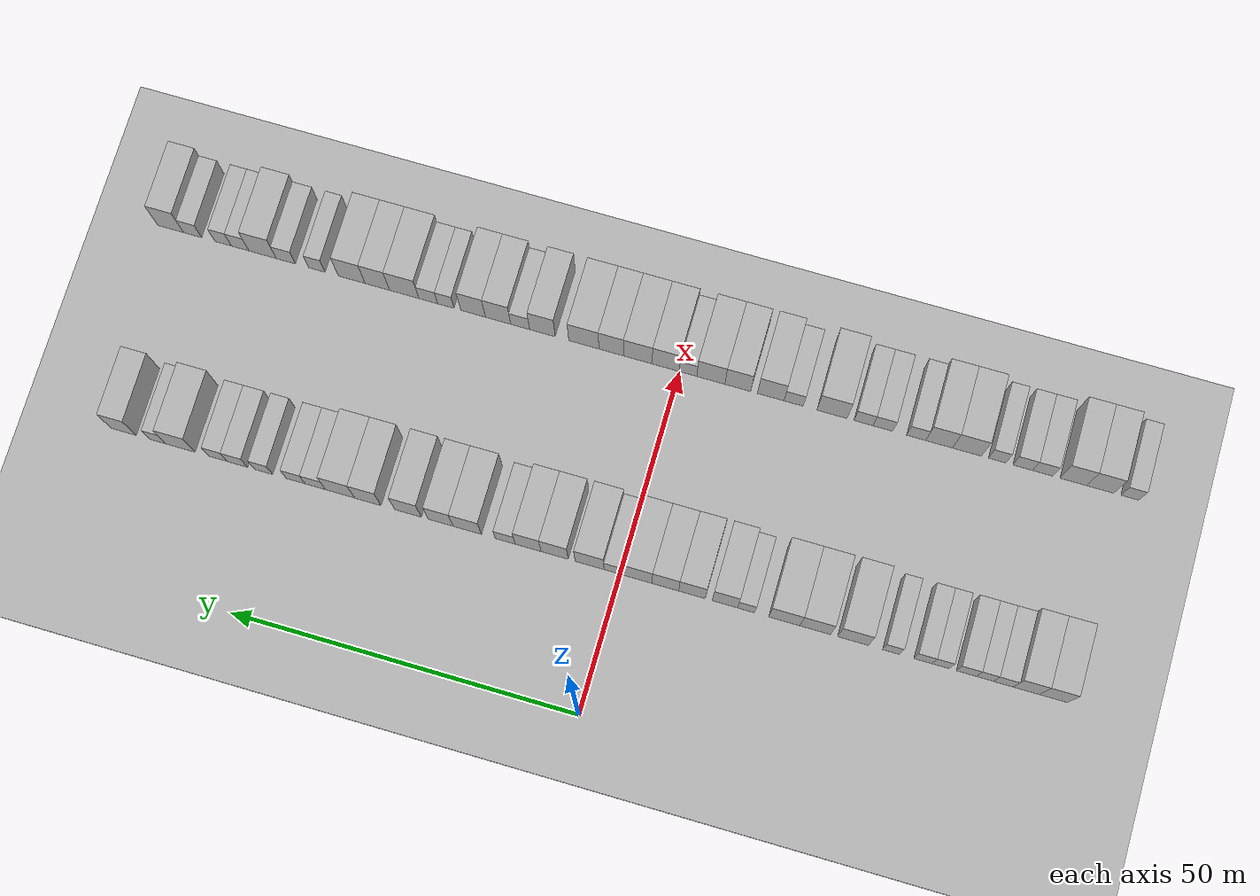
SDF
<sdf version="1.6">
 <world name="default">
  <include><name>ground_plane_1</name><uri>model://HANNAS_ground_plane</uri></include>
  <include>
   <name>ground_plane_2</name>
   <uri>model://HANNAS_ground_plane</uri>
   <pose>100 0 0  0 0 0</pose>
  </include>
  <model name="building_35">
   <static>1</static>
   <pose>25.0000 -61.4168 0 0.000000 0.000000 0.000000</pose>
   <link name="link">
    <pose>0 0 4.50 0 0 0</pose>
    <collision name="collision"><geometry><box><size>10.0000 3.9105 9.0000</size></box></geometry></collision>
    <visual name="visual">
     <cast_shadows>0</cast_shadows>
     <geometry><box><size>10.0000 3.9105 9.0000</size></box></geometry>
     <material>
      <script>
       <uri>model://HANNAS_wall/materials/scripts</uri>
       <uri>model://HANNAS_wall/materials/textures</uri>
       <name>vrc/HANNAS_wall</name>
      </script>
     </material>
    </visual>
   </link>
  </model>
  <model name="building_36">
   <static>1</static>
   <pose>25.0000 -57.6154 0 0.000000 0.000000 0.000000</pose>
   <link name="link">
    <pose>0 0 4.50 0 0 0</pose>
    <collision name="collision"><geometry><box><size>10.0000 3.6923 9.0000</size></box></geometry></collision>
    <visual name="visual">
     <cast_shadows>0</cast_shadows>
     <geometry><box><size>10.0000 3.6923 9.0000</size></box></geometry>
     <material>
      <script>
       <uri>model://HANNAS_wall/materials/scripts</uri>
       <uri>model://HANNAS_wall/materials/textures</uri>
       <name>vrc/HANNAS_wall</name>
      </script>
     </material>
    </visual>
   </link>
  </model>
  <model name="building_37">
   <static>1</static>
   <pose>25.0000 -54.3791 0 0.000000 0.000000 0.000000</pose>
   <link name="link">
    <pose>0 0 3.00 0 0 0</pose>
    <collision name="collision"><geometry><box><size>10.0000 2.7803 6.0000</size></box></geometry></collision>
    <visual name="visual">
     <cast_shadows>0</cast_shadows>
     <geometry><box><size>10.0000 2.7803 6.0000</size></box></geometry>
     <material>
      <script>
       <uri>model://HANNAS_wall/materials/scripts</uri>
       <uri>model://HANNAS_wall/materials/textures</uri>
       <name>vrc/HANNAS_wall</name>
      </script>
     </material>
    </visual>
   </link>
  </model>
  <model name="building_38">
   <static>1</static>
   <pose>25.0000 -51.7858 0 0.000000 0.000000 0.000000</pose>
   <link name="link">
    <pose>0 0 3.00 0 0 0</pose>
    <collision name="collision"><geometry><box><size>10.0000 2.4063 6.0000</size></box></geometry></collision>
    <visual name="visual">
     <cast_shadows>0</cast_shadows>
     <geometry><box><size>10.0000 2.4063 6.0000</size></box></geometry>
     <material>
      <script>
       <uri>model://HANNAS_wall/materials/scripts</uri>
       <uri>model://HANNAS_wall/materials/textures</uri>
       <name>vrc/HANNAS_wall</name>
      </script>
     </material>
    </visual>
   </link>
  </model>
  <model name="building_39">
   <static>1</static>
   <pose>25.0000 -49.1790 0 0.000000 0.000000 0.000000</pose>
   <link name="link">
    <pose>0 0 3.00 0 0 0</pose>
    <collision name="collision"><geometry><box><size>10.0000 2.8073 6.0000</size></box></geometry></collision>
    <visual name="visual">
     <cast_shadows>0</cast_shadows>
     <geometry><box><size>10.0000 2.8073 6.0000</size></box></geometry>
     <material>
      <script>
       <uri>model://HANNAS_wall/materials/scripts</uri>
       <uri>model://HANNAS_wall/materials/textures</uri>
       <name>vrc/HANNAS_wall</name>
      </script>
     </material>
    </visual>
   </link>
  </model>
  <model name="building_40">
   <static>1</static>
   <pose>25.0000 -45.5491 0 0.000000 0.000000 0.000000</pose>
   <link name="link">
    <pose>0 0 3.00 0 0 0</pose>
    <collision name="collision"><geometry><box><size>10.0000 2.4526 6.0000</size></box></geometry></collision>
    <visual name="visual">
     <cast_shadows>0</cast_shadows>
     <geometry><box><size>10.0000 2.4526 6.0000</size></box></geometry>
     <material>
      <script>
       <uri>model://HANNAS_wall/materials/scripts</uri>
       <uri>model://HANNAS_wall/materials/textures</uri>
       <name>vrc/HANNAS_wall</name>
      </script>
     </material>
    </visual>
   </link>
  </model>
  <model name="building_41">
   <static>1</static>
   <pose>25.0000 -43.0538 0 0.000000 0.000000 0.000000</pose>
   <link name="link">
    <pose>0 0 3.00 0 0 0</pose>
    <collision name="collision"><geometry><box><size>10.0000 2.5381 6.0000</size></box></geometry></collision>
    <visual name="visual">
     <cast_shadows>0</cast_shadows>
     <geometry><box><size>10.0000 2.5381 6.0000</size></box></geometry>
     <material>
      <script>
       <uri>model://HANNAS_wall/materials/scripts</uri>
       <uri>model://HANNAS_wall/materials/textures</uri>
       <name>vrc/HANNAS_wall</name>
      </script>
     </material>
    </visual>
   </link>
  </model>
  <model name="building_42">
   <static>1</static>
   <pose>25.0000 -38.5766 0 0.000000 0.000000 0.000000</pose>
   <link name="link">
    <pose>0 0 3.00 0 0 0</pose>
    <collision name="collision"><geometry><box><size>10.0000 2.4163 6.0000</size></box></geometry></collision>
    <visual name="visual">
     <cast_shadows>0</cast_shadows>
     <geometry><box><size>10.0000 2.4163 6.0000</size></box></geometry>
     <material>
      <script>
       <uri>model://HANNAS_wall/materials/scripts</uri>
       <uri>model://HANNAS_wall/materials/textures</uri>
       <name>vrc/HANNAS_wall</name>
      </script>
     </material>
    </visual>
   </link>
  </model>
  <model name="building_43">
   <static>1</static>
   <pose>25.0000 -33.1783 0 0.000000 0.000000 0.000000</pose>
   <link name="link">
    <pose>0 0 4.50 0 0 0</pose>
    <collision name="collision"><geometry><box><size>10.0000 4.3802 9.0000</size></box></geometry></collision>
    <visual name="visual">
     <cast_shadows>0</cast_shadows>
     <geometry><box><size>10.0000 4.3802 9.0000</size></box></geometry>
     <material>
      <script>
       <uri>model://HANNAS_wall/materials/scripts</uri>
       <uri>model://HANNAS_wall/materials/textures</uri>
       <name>vrc/HANNAS_wall</name>
      </script>
     </material>
    </visual>
   </link>
  </model>
  <model name="building_44">
   <static>1</static>
   <pose>25.0000 -27.8201 0 0.000000 0.000000 0.000000</pose>
   <link name="link">
    <pose>0 0 4.50 0 0 0</pose>
    <collision name="collision"><geometry><box><size>10.0000 4.3362 9.0000</size></box></geometry></collision>
    <visual name="visual">
     <cast_shadows>0</cast_shadows>
     <geometry><box><size>10.0000 4.3362 9.0000</size></box></geometry>
     <material>
      <script>
       <uri>model://HANNAS_wall/materials/scripts</uri>
       <uri>model://HANNAS_wall/materials/textures</uri>
       <name>vrc/HANNAS_wall</name>
      </script>
     </material>
    </visual>
   </link>
  </model>
  <model name="building_45">
   <static>1</static>
   <pose>25.0000 -23.4307 0 0.000000 0.000000 0.000000</pose>
   <link name="link">
    <pose>0 0 4.50 0 0 0</pose>
    <collision name="collision"><geometry><box><size>10.0000 4.4427 9.0000</size></box></geometry></collision>
    <visual name="visual">
     <cast_shadows>0</cast_shadows>
     <geometry><box><size>10.0000 4.4427 9.0000</size></box></geometry>
     <material>
      <script>
       <uri>model://HANNAS_wall/materials/scripts</uri>
       <uri>model://HANNAS_wall/materials/textures</uri>
       <name>vrc/HANNAS_wall</name>
      </script>
     </material>
    </visual>
   </link>
  </model>
  <model name="building_46">
   <static>1</static>
   <pose>25.0000 -17.9880 0 0.000000 0.000000 0.000000</pose>
   <link name="link">
    <pose>0 0 3.00 0 0 0</pose>
    <collision name="collision"><geometry><box><size>10.0000 2.4428 6.0000</size></box></geometry></collision>
    <visual name="visual">
     <cast_shadows>0</cast_shadows>
     <geometry><box><size>10.0000 2.4428 6.0000</size></box></geometry>
     <material>
      <script>
       <uri>model://HANNAS_wall/materials/scripts</uri>
       <uri>model://HANNAS_wall/materials/textures</uri>
       <name>vrc/HANNAS_wall</name>
      </script>
     </material>
    </visual>
   </link>
  </model>
  <model name="building_47">
   <static>1</static>
   <pose>25.0000 -14.9655 0 0.000000 0.000000 0.000000</pose>
   <link name="link">
    <pose>0 0 4.50 0 0 0</pose>
    <collision name="collision"><geometry><box><size>10.0000 3.6022 9.0000</size></box></geometry></collision>
    <visual name="visual">
     <cast_shadows>0</cast_shadows>
     <geometry><box><size>10.0000 3.6022 9.0000</size></box></geometry>
     <material>
      <script>
       <uri>model://HANNAS_wall/materials/scripts</uri>
       <uri>model://HANNAS_wall/materials/textures</uri>
       <name>vrc/HANNAS_wall</name>
      </script>
     </material>
    </visual>
   </link>
  </model>
  <model name="building_48">
   <static>1</static>
   <pose>25.0000 -10.2720 0 0.000000 0.000000 0.000000</pose>
   <link name="link">
    <pose>0 0 4.50 0 0 0</pose>
    <collision name="collision"><geometry><box><size>10.0000 3.7848 9.0000</size></box></geometry></collision>
    <visual name="visual">
     <cast_shadows>0</cast_shadows>
     <geometry><box><size>10.0000 3.7848 9.0000</size></box></geometry>
     <material>
      <script>
       <uri>model://HANNAS_wall/materials/scripts</uri>
       <uri>model://HANNAS_wall/materials/textures</uri>
       <name>vrc/HANNAS_wall</name>
      </script>
     </material>
    </visual>
   </link>
  </model>
  <model name="building_49">
   <static>1</static>
   <pose>25.0000 -6.4645 0 0.000000 0.000000 0.000000</pose>
   <link name="link">
    <pose>0 0 4.50 0 0 0</pose>
    <collision name="collision"><geometry><box><size>10.0000 3.8303 9.0000</size></box></geometry></collision>
    <visual name="visual">
     <cast_shadows>0</cast_shadows>
     <geometry><box><size>10.0000 3.8303 9.0000</size></box></geometry>
     <material>
      <script>
       <uri>model://HANNAS_wall/materials/scripts</uri>
       <uri>model://HANNAS_wall/materials/textures</uri>
       <name>vrc/HANNAS_wall</name>
      </script>
     </material>
    </visual>
   </link>
  </model>
  <model name="building_50">
   <static>1</static>
   <pose>25.0000 -2.5199 0 0.000000 0.000000 0.000000</pose>
   <link name="link">
    <pose>0 0 4.50 0 0 0</pose>
    <collision name="collision"><geometry><box><size>10.0000 4.0589 9.0000</size></box></geometry></collision>
    <visual name="visual">
     <cast_shadows>0</cast_shadows>
     <geometry><box><size>10.0000 4.0589 9.0000</size></box></geometry>
     <material>
      <script>
       <uri>model://HANNAS_wall/materials/scripts</uri>
       <uri>model://HANNAS_wall/materials/textures</uri>
       <name>vrc/HANNAS_wall</name>
      </script>
     </material>
    </visual>
   </link>
  </model>
  <model name="building_51">
   <static>1</static>
   <pose>25.0000 0.9249 0 0.000000 0.000000 0.000000</pose>
   <link name="link">
    <pose>0 0 3.00 0 0 0</pose>
    <collision name="collision"><geometry><box><size>10.0000 2.8308 6.0000</size></box></geometry></collision>
    <visual name="visual">
     <cast_shadows>0</cast_shadows>
     <geometry><box><size>10.0000 2.8308 6.0000</size></box></geometry>
     <material>
      <script>
       <uri>model://HANNAS_wall/materials/scripts</uri>
       <uri>model://HANNAS_wall/materials/textures</uri>
       <name>vrc/HANNAS_wall</name>
      </script>
     </material>
    </visual>
   </link>
  </model>
  <model name="building_52">
   <static>1</static>
   <pose>25.0000 4.4178 0 0.000000 0.000000 0.000000</pose>
   <link name="link">
    <pose>0 0 4.50 0 0 0</pose>
    <collision name="collision"><geometry><box><size>10.0000 4.1549 9.0000</size></box></geometry></collision>
    <visual name="visual">
     <cast_shadows>0</cast_shadows>
     <geometry><box><size>10.0000 4.1549 9.0000</size></box></geometry>
     <material>
      <script>
       <uri>model://HANNAS_wall/materials/scripts</uri>
       <uri>model://HANNAS_wall/materials/textures</uri>
       <name>vrc/HANNAS_wall</name>
      </script>
     </material>
    </visual>
   </link>
  </model>
  <model name="building_53">
   <static>1</static>
   <pose>25.0000 9.4551 0 0.000000 0.000000 0.000000</pose>
   <link name="link">
    <pose>0 0 4.50 0 0 0</pose>
    <collision name="collision"><geometry><box><size>10.0000 3.9196 9.0000</size></box></geometry></collision>
    <visual name="visual">
     <cast_shadows>0</cast_shadows>
     <geometry><box><size>10.0000 3.9196 9.0000</size></box></geometry>
     <material>
      <script>
       <uri>model://HANNAS_wall/materials/scripts</uri>
       <uri>model://HANNAS_wall/materials/textures</uri>
       <name>vrc/HANNAS_wall</name>
      </script>
     </material>
    </visual>
   </link>
  </model>
  <model name="building_54">
   <static>1</static>
   <pose>25.0000 13.2608 0 0.000000 0.000000 0.000000</pose>
   <link name="link">
    <pose>0 0 4.50 0 0 0</pose>
    <collision name="collision"><geometry><box><size>10.0000 3.6920 9.0000</size></box></geometry></collision>
    <visual name="visual">
     <cast_shadows>0</cast_shadows>
     <geometry><box><size>10.0000 3.6920 9.0000</size></box></geometry>
     <material>
      <script>
       <uri>model://HANNAS_wall/materials/scripts</uri>
       <uri>model://HANNAS_wall/materials/textures</uri>
       <name>vrc/HANNAS_wall</name>
      </script>
     </material>
    </visual>
   </link>
  </model>
  <model name="building_55">
   <static>1</static>
   <pose>25.0000 16.5639 0 0.000000 0.000000 0.000000</pose>
   <link name="link">
    <pose>0 0 3.00 0 0 0</pose>
    <collision name="collision"><geometry><box><size>10.0000 2.9141 6.0000</size></box></geometry></collision>
    <visual name="visual">
     <cast_shadows>0</cast_shadows>
     <geometry><box><size>10.0000 2.9141 6.0000</size></box></geometry>
     <material>
      <script>
       <uri>model://HANNAS_wall/materials/scripts</uri>
       <uri>model://HANNAS_wall/materials/textures</uri>
       <name>vrc/HANNAS_wall</name>
      </script>
     </material>
    </visual>
   </link>
  </model>
  <model name="building_56">
   <static>1</static>
   <pose>25.0000 22.0654 0 0.000000 0.000000 0.000000</pose>
   <link name="link">
    <pose>0 0 4.50 0 0 0</pose>
    <collision name="collision"><geometry><box><size>10.0000 4.0890 9.0000</size></box></geometry></collision>
    <visual name="visual">
     <cast_shadows>0</cast_shadows>
     <geometry><box><size>10.0000 4.0890 9.0000</size></box></geometry>
     <material>
      <script>
       <uri>model://HANNAS_wall/materials/scripts</uri>
       <uri>model://HANNAS_wall/materials/textures</uri>
       <name>vrc/HANNAS_wall</name>
      </script>
     </material>
    </visual>
   </link>
  </model>
  <model name="building_57">
   <static>1</static>
   <pose>25.0000 25.9217 0 0.000000 0.000000 0.000000</pose>
   <link name="link">
    <pose>0 0 4.50 0 0 0</pose>
    <collision name="collision"><geometry><box><size>10.0000 3.6235 9.0000</size></box></geometry></collision>
    <visual name="visual">
     <cast_shadows>0</cast_shadows>
     <geometry><box><size>10.0000 3.6235 9.0000</size></box></geometry>
     <material>
      <script>
       <uri>model://HANNAS_wall/materials/scripts</uri>
       <uri>model://HANNAS_wall/materials/textures</uri>
       <name>vrc/HANNAS_wall</name>
      </script>
     </material>
    </visual>
   </link>
  </model>
  <model name="building_58">
   <static>1</static>
   <pose>25.0000 30.6726 0 0.000000 0.000000 0.000000</pose>
   <link name="link">
    <pose>0 0 4.50 0 0 0</pose>
    <collision name="collision"><geometry><box><size>10.0000 3.8783 9.0000</size></box></geometry></collision>
    <visual name="visual">
     <cast_shadows>0</cast_shadows>
     <geometry><box><size>10.0000 3.8783 9.0000</size></box></geometry>
     <material>
      <script>
       <uri>model://HANNAS_wall/materials/scripts</uri>
       <uri>model://HANNAS_wall/materials/textures</uri>
       <name>vrc/HANNAS_wall</name>
      </script>
     </material>
    </visual>
   </link>
  </model>
  <model name="building_59">
   <static>1</static>
   <pose>25.0000 36.5301 0 0.000000 0.000000 0.000000</pose>
   <link name="link">
    <pose>0 0 4.50 0 0 0</pose>
    <collision name="collision"><geometry><box><size>10.0000 3.8368 9.0000</size></box></geometry></collision>
    <visual name="visual">
     <cast_shadows>0</cast_shadows>
     <geometry><box><size>10.0000 3.8368 9.0000</size></box></geometry>
     <material>
      <script>
       <uri>model://HANNAS_wall/materials/scripts</uri>
       <uri>model://HANNAS_wall/materials/textures</uri>
       <name>vrc/HANNAS_wall</name>
      </script>
     </material>
    </visual>
   </link>
  </model>
  <model name="building_60">
   <static>1</static>
   <pose>25.0000 40.5798 0 0.000000 0.000000 0.000000</pose>
   <link name="link">
    <pose>0 0 4.50 0 0 0</pose>
    <collision name="collision"><geometry><box><size>10.0000 4.2625 9.0000</size></box></geometry></collision>
    <visual name="visual">
     <cast_shadows>0</cast_shadows>
     <geometry><box><size>10.0000 4.2625 9.0000</size></box></geometry>
     <material>
      <script>
       <uri>model://HANNAS_wall/materials/scripts</uri>
       <uri>model://HANNAS_wall/materials/textures</uri>
       <name>vrc/HANNAS_wall</name>
      </script>
     </material>
    </visual>
   </link>
  </model>
  <model name="building_61">
   <static>1</static>
   <pose>25.0000 44.2027 0 0.000000 0.000000 0.000000</pose>
   <link name="link">
    <pose>0 0 3.00 0 0 0</pose>
    <collision name="collision"><geometry><box><size>10.0000 2.9833 6.0000</size></box></geometry></collision>
    <visual name="visual">
     <cast_shadows>0</cast_shadows>
     <geometry><box><size>10.0000 2.9833 6.0000</size></box></geometry>
     <material>
      <script>
       <uri>model://HANNAS_wall/materials/scripts</uri>
       <uri>model://HANNAS_wall/materials/textures</uri>
       <name>vrc/HANNAS_wall</name>
      </script>
     </material>
    </visual>
   </link>
  </model>
  <model name="building_62">
   <static>1</static>
   <pose>25.0000 47.0833 0 0.000000 0.000000 0.000000</pose>
   <link name="link">
    <pose>0 0 3.00 0 0 0</pose>
    <collision name="collision"><geometry><box><size>10.0000 2.7780 6.0000</size></box></geometry></collision>
    <visual name="visual">
     <cast_shadows>0</cast_shadows>
     <geometry><box><size>10.0000 2.7780 6.0000</size></box></geometry>
     <material>
      <script>
       <uri>model://HANNAS_wall/materials/scripts</uri>
       <uri>model://HANNAS_wall/materials/textures</uri>
       <name>vrc/HANNAS_wall</name>
      </script>
     </material>
    </visual>
   </link>
  </model>
  <model name="building_63">
   <static>1</static>
   <pose>25.0000 51.8106 0 0.000000 0.000000 0.000000</pose>
   <link name="link">
    <pose>0 0 3.00 0 0 0</pose>
    <collision name="collision"><geometry><box><size>10.0000 2.6768 6.0000</size></box></geometry></collision>
    <visual name="visual">
     <cast_shadows>0</cast_shadows>
     <geometry><box><size>10.0000 2.6768 6.0000</size></box></geometry>
     <material>
      <script>
       <uri>model://HANNAS_wall/materials/scripts</uri>
       <uri>model://HANNAS_wall/materials/textures</uri>
       <name>vrc/HANNAS_wall</name>
      </script>
     </material>
    </visual>
   </link>
  </model>
  <model name="building_64">
   <static>1</static>
   <pose>25.0000 55.6346 0 0.000000 0.000000 0.000000</pose>
   <link name="link">
    <pose>0 0 3.00 0 0 0</pose>
    <collision name="collision"><geometry><box><size>10.0000 2.9713 6.0000</size></box></geometry></collision>
    <visual name="visual">
     <cast_shadows>0</cast_shadows>
     <geometry><box><size>10.0000 2.9713 6.0000</size></box></geometry>
     <material>
      <script>
       <uri>model://HANNAS_wall/materials/scripts</uri>
       <uri>model://HANNAS_wall/materials/textures</uri>
       <name>vrc/HANNAS_wall</name>
      </script>
     </material>
    </visual>
   </link>
  </model>
  <model name="building_65">
   <static>1</static>
   <pose>25.0000 58.5050 0 0.000000 0.000000 0.000000</pose>
   <link name="link">
    <pose>0 0 3.00 0 0 0</pose>
    <collision name="collision"><geometry><box><size>10.0000 2.7695 6.0000</size></box></geometry></collision>
    <visual name="visual">
     <cast_shadows>0</cast_shadows>
     <geometry><box><size>10.0000 2.7695 6.0000</size></box></geometry>
     <material>
      <script>
       <uri>model://HANNAS_wall/materials/scripts</uri>
       <uri>model://HANNAS_wall/materials/textures</uri>
       <name>vrc/HANNAS_wall</name>
      </script>
     </material>
    </visual>
   </link>
  </model>
  <model name="building_66">
   <static>1</static>
   <pose>25.0000 64.0120 0 0.000000 0.000000 0.000000</pose>
   <link name="link">
    <pose>0 0 4.50 0 0 0</pose>
    <collision name="collision"><geometry><box><size>10.0000 4.2446 9.0000</size></box></geometry></collision>
    <visual name="visual">
     <cast_shadows>0</cast_shadows>
     <geometry><box><size>10.0000 4.2446 9.0000</size></box></geometry>
     <material>
      <script>
       <uri>model://HANNAS_wall/materials/scripts</uri>
       <uri>model://HANNAS_wall/materials/textures</uri>
       <name>vrc/HANNAS_wall</name>
      </script>
     </material>
    </visual>
   </link>
  </model>
  <model name="building_67">
   <static>1</static>
   <pose>25.0000 67.3540 0 0.000000 0.000000 0.000000</pose>
   <link name="link">
    <pose>0 0 3.00 0 0 0</pose>
    <collision name="collision"><geometry><box><size>10.0000 2.4393 6.0000</size></box></geometry></collision>
    <visual name="visual">
     <cast_shadows>0</cast_shadows>
     <geometry><box><size>10.0000 2.4393 6.0000</size></box></geometry>
     <material>
      <script>
       <uri>model://HANNAS_wall/materials/scripts</uri>
       <uri>model://HANNAS_wall/materials/textures</uri>
       <name>vrc/HANNAS_wall</name>
      </script>
     </material>
    </visual>
   </link>
  </model>
  <model name="building_68">
   <static>1</static>
   <pose>25.0000 72.4273 0 0.000000 0.000000 0.000000</pose>
   <link name="link">
    <pose>0 0 4.50 0 0 0</pose>
    <collision name="collision"><geometry><box><size>10.0000 3.7074 9.0000</size></box></geometry></collision>
    <visual name="visual">
     <cast_shadows>0</cast_shadows>
     <geometry><box><size>10.0000 3.7074 9.0000</size></box></geometry>
     <material>
      <script>
       <uri>model://HANNAS_wall/materials/scripts</uri>
       <uri>model://HANNAS_wall/materials/textures</uri>
       <name>vrc/HANNAS_wall</name>
      </script>
     </material>
    </visual>
   </link>
  </model>
  <model name="building_140">
   <static>1</static>
   <pose>55.0000 -65.0777 0 0.000000 0.000000 0.000000</pose>
   <link name="link">
    <pose>0 0 3.00 0 0 0</pose>
    <collision name="collision"><geometry><box><size>10.0000 2.5654 6.0000</size></box></geometry></collision>
    <visual name="visual">
     <cast_shadows>0</cast_shadows>
     <geometry><box><size>10.0000 2.5654 6.0000</size></box></geometry>
     <material>
      <script>
       <uri>model://HANNAS_wall/materials/scripts</uri>
       <uri>model://HANNAS_wall/materials/textures</uri>
       <name>vrc/HANNAS_wall</name>
      </script>
     </material>
    </visual>
   </link>
  </model>
  <model name="building_141">
   <static>1</static>
   <pose>55.0000 -60.8443 0 0.000000 0.000000 0.000000</pose>
   <link name="link">
    <pose>0 0 4.50 0 0 0</pose>
    <collision name="collision"><geometry><box><size>10.0000 3.9014 9.0000</size></box></geometry></collision>
    <visual name="visual">
     <cast_shadows>0</cast_shadows>
     <geometry><box><size>10.0000 3.9014 9.0000</size></box></geometry>
     <material>
      <script>
       <uri>model://HANNAS_wall/materials/scripts</uri>
       <uri>model://HANNAS_wall/materials/textures</uri>
       <name>vrc/HANNAS_wall</name>
      </script>
     </material>
    </visual>
   </link>
  </model>
  <model name="building_142">
   <static>1</static>
   <pose>55.0000 -56.9985 0 0.000000 0.000000 0.000000</pose>
   <link name="link">
    <pose>0 0 4.50 0 0 0</pose>
    <collision name="collision"><geometry><box><size>10.0000 3.7900 9.0000</size></box></geometry></collision>
    <visual name="visual">
     <cast_shadows>0</cast_shadows>
     <geometry><box><size>10.0000 3.7900 9.0000</size></box></geometry>
     <material>
      <script>
       <uri>model://HANNAS_wall/materials/scripts</uri>
       <uri>model://HANNAS_wall/materials/textures</uri>
       <name>vrc/HANNAS_wall</name>
      </script>
     </material>
    </visual>
   </link>
  </model>
  <model name="building_143">
   <static>1</static>
   <pose>55.0000 -52.6348 0 0.000000 0.000000 0.000000</pose>
   <link name="link">
    <pose>0 0 3.00 0 0 0</pose>
    <collision name="collision"><geometry><box><size>10.0000 2.9374 6.0000</size></box></geometry></collision>
    <visual name="visual">
     <cast_shadows>0</cast_shadows>
     <geometry><box><size>10.0000 2.9374 6.0000</size></box></geometry>
     <material>
      <script>
       <uri>model://HANNAS_wall/materials/scripts</uri>
       <uri>model://HANNAS_wall/materials/textures</uri>
       <name>vrc/HANNAS_wall</name>
      </script>
     </material>
    </visual>
   </link>
  </model>
  <model name="building_144">
   <static>1</static>
   <pose>55.0000 -49.7484 0 0.000000 0.000000 0.000000</pose>
   <link name="link">
    <pose>0 0 3.00 0 0 0</pose>
    <collision name="collision"><geometry><box><size>10.0000 2.8354 6.0000</size></box></geometry></collision>
    <visual name="visual">
     <cast_shadows>0</cast_shadows>
     <geometry><box><size>10.0000 2.8354 6.0000</size></box></geometry>
     <material>
      <script>
       <uri>model://HANNAS_wall/materials/scripts</uri>
       <uri>model://HANNAS_wall/materials/textures</uri>
       <name>vrc/HANNAS_wall</name>
      </script>
     </material>
    </visual>
   </link>
  </model>
  <model name="building_145">
   <static>1</static>
   <pose>55.0000 -46.0818 0 0.000000 0.000000 0.000000</pose>
   <link name="link">
    <pose>0 0 3.00 0 0 0</pose>
    <collision name="collision"><geometry><box><size>10.0000 2.4978 6.0000</size></box></geometry></collision>
    <visual name="visual">
     <cast_shadows>0</cast_shadows>
     <geometry><box><size>10.0000 2.4978 6.0000</size></box></geometry>
     <material>
      <script>
       <uri>model://HANNAS_wall/materials/scripts</uri>
       <uri>model://HANNAS_wall/materials/textures</uri>
       <name>vrc/HANNAS_wall</name>
      </script>
     </material>
    </visual>
   </link>
  </model>
  <model name="building_146">
   <static>1</static>
   <pose>55.0000 -41.7359 0 0.000000 0.000000 0.000000</pose>
   <link name="link">
    <pose>0 0 4.50 0 0 0</pose>
    <collision name="collision"><geometry><box><size>10.0000 4.1939 9.0000</size></box></geometry></collision>
    <visual name="visual">
     <cast_shadows>0</cast_shadows>
     <geometry><box><size>10.0000 4.1939 9.0000</size></box></geometry>
     <material>
      <script>
       <uri>model://HANNAS_wall/materials/scripts</uri>
       <uri>model://HANNAS_wall/materials/textures</uri>
       <name>vrc/HANNAS_wall</name>
      </script>
     </material>
    </visual>
   </link>
  </model>
  <model name="building_147">
   <static>1</static>
   <pose>55.0000 -37.7081 0 0.000000 0.000000 0.000000</pose>
   <link name="link">
    <pose>0 0 4.50 0 0 0</pose>
    <collision name="collision"><geometry><box><size>10.0000 3.8618 9.0000</size></box></geometry></collision>
    <visual name="visual">
     <cast_shadows>0</cast_shadows>
     <geometry><box><size>10.0000 3.8618 9.0000</size></box></geometry>
     <material>
      <script>
       <uri>model://HANNAS_wall/materials/scripts</uri>
       <uri>model://HANNAS_wall/materials/textures</uri>
       <name>vrc/HANNAS_wall</name>
      </script>
     </material>
    </visual>
   </link>
  </model>
  <model name="building_148">
   <static>1</static>
   <pose>55.0000 -34.4009 0 0.000000 0.000000 0.000000</pose>
   <link name="link">
    <pose>0 0 3.00 0 0 0</pose>
    <collision name="collision"><geometry><box><size>10.0000 2.7525 6.0000</size></box></geometry></collision>
    <visual name="visual">
     <cast_shadows>0</cast_shadows>
     <geometry><box><size>10.0000 2.7525 6.0000</size></box></geometry>
     <material>
      <script>
       <uri>model://HANNAS_wall/materials/scripts</uri>
       <uri>model://HANNAS_wall/materials/textures</uri>
       <name>vrc/HANNAS_wall</name>
      </script>
     </material>
    </visual>
   </link>
  </model>
  <model name="building_149">
   <static>1</static>
   <pose>55.0000 -29.5884 0 0.000000 0.000000 0.000000</pose>
   <link name="link">
    <pose>0 0 3.00 0 0 0</pose>
    <collision name="collision"><geometry><box><size>10.0000 2.8724 6.0000</size></box></geometry></collision>
    <visual name="visual">
     <cast_shadows>0</cast_shadows>
     <geometry><box><size>10.0000 2.8724 6.0000</size></box></geometry>
     <material>
      <script>
       <uri>model://HANNAS_wall/materials/scripts</uri>
       <uri>model://HANNAS_wall/materials/textures</uri>
       <name>vrc/HANNAS_wall</name>
      </script>
     </material>
    </visual>
   </link>
  </model>
  <model name="building_150">
   <static>1</static>
   <pose>55.0000 -26.7783 0 0.000000 0.000000 0.000000</pose>
   <link name="link">
    <pose>0 0 3.00 0 0 0</pose>
    <collision name="collision"><geometry><box><size>10.0000 2.7478 6.0000</size></box></geometry></collision>
    <visual name="visual">
     <cast_shadows>0</cast_shadows>
     <geometry><box><size>10.0000 2.7478 6.0000</size></box></geometry>
     <material>
      <script>
       <uri>model://HANNAS_wall/materials/scripts</uri>
       <uri>model://HANNAS_wall/materials/textures</uri>
       <name>vrc/HANNAS_wall</name>
      </script>
     </material>
    </visual>
   </link>
  </model>
  <model name="building_151">
   <static>1</static>
   <pose>55.0000 -22.2162 0 0.000000 0.000000 0.000000</pose>
   <link name="link">
    <pose>0 0 4.50 0 0 0</pose>
    <collision name="collision"><geometry><box><size>10.0000 4.3764 9.0000</size></box></geometry></collision>
    <visual name="visual">
     <cast_shadows>0</cast_shadows>
     <geometry><box><size>10.0000 4.3764 9.0000</size></box></geometry>
     <material>
      <script>
       <uri>model://HANNAS_wall/materials/scripts</uri>
       <uri>model://HANNAS_wall/materials/textures</uri>
       <name>vrc/HANNAS_wall</name>
      </script>
     </material>
    </visual>
   </link>
  </model>
  <model name="building_152">
   <static>1</static>
   <pose>55.0000 -16.6265 0 0.000000 0.000000 0.000000</pose>
   <link name="link">
    <pose>0 0 3.00 0 0 0</pose>
    <collision name="collision"><geometry><box><size>10.0000 2.8031 6.0000</size></box></geometry></collision>
    <visual name="visual">
     <cast_shadows>0</cast_shadows>
     <geometry><box><size>10.0000 2.8031 6.0000</size></box></geometry>
     <material>
      <script>
       <uri>model://HANNAS_wall/materials/scripts</uri>
       <uri>model://HANNAS_wall/materials/textures</uri>
       <name>vrc/HANNAS_wall</name>
      </script>
     </material>
    </visual>
   </link>
  </model>
  <model name="building_153">
   <static>1</static>
   <pose>55.0000 -13.2953 0 0.000000 0.000000 0.000000</pose>
   <link name="link">
    <pose>0 0 4.50 0 0 0</pose>
    <collision name="collision"><geometry><box><size>10.0000 3.8593 9.0000</size></box></geometry></collision>
    <visual name="visual">
     <cast_shadows>0</cast_shadows>
     <geometry><box><size>10.0000 3.8593 9.0000</size></box></geometry>
     <material>
      <script>
       <uri>model://HANNAS_wall/materials/scripts</uri>
       <uri>model://HANNAS_wall/materials/textures</uri>
       <name>vrc/HANNAS_wall</name>
      </script>
     </material>
    </visual>
   </link>
  </model>
  <model name="building_154">
   <static>1</static>
   <pose>55.0000 -8.4882 0 0.000000 0.000000 0.000000</pose>
   <link name="link">
    <pose>0 0 4.50 0 0 0</pose>
    <collision name="collision"><geometry><box><size>10.0000 3.7548 9.0000</size></box></geometry></collision>
    <visual name="visual">
     <cast_shadows>0</cast_shadows>
     <geometry><box><size>10.0000 3.7548 9.0000</size></box></geometry>
     <material>
      <script>
       <uri>model://HANNAS_wall/materials/scripts</uri>
       <uri>model://HANNAS_wall/materials/textures</uri>
       <name>vrc/HANNAS_wall</name>
      </script>
     </material>
    </visual>
   </link>
  </model>
  <model name="building_155">
   <static>1</static>
   <pose>55.0000 -4.5503 0 0.000000 0.000000 0.000000</pose>
   <link name="link">
    <pose>0 0 4.50 0 0 0</pose>
    <collision name="collision"><geometry><box><size>10.0000 4.1210 9.0000</size></box></geometry></collision>
    <visual name="visual">
     <cast_shadows>0</cast_shadows>
     <geometry><box><size>10.0000 4.1210 9.0000</size></box></geometry>
     <material>
      <script>
       <uri>model://HANNAS_wall/materials/scripts</uri>
       <uri>model://HANNAS_wall/materials/textures</uri>
       <name>vrc/HANNAS_wall</name>
      </script>
     </material>
    </visual>
   </link>
  </model>
  <model name="building_156">
   <static>1</static>
   <pose>55.0000 -1.2147 0 0.000000 0.000000 0.000000</pose>
   <link name="link">
    <pose>0 0 3.00 0 0 0</pose>
    <collision name="collision"><geometry><box><size>10.0000 2.5502 6.0000</size></box></geometry></collision>
    <visual name="visual">
     <cast_shadows>0</cast_shadows>
     <geometry><box><size>10.0000 2.5502 6.0000</size></box></geometry>
     <material>
      <script>
       <uri>model://HANNAS_wall/materials/scripts</uri>
       <uri>model://HANNAS_wall/materials/textures</uri>
       <name>vrc/HANNAS_wall</name>
      </script>
     </material>
    </visual>
   </link>
  </model>
  <model name="building_157">
   <static>1</static>
   <pose>55.0000 2.0529 0 0.000000 0.000000 0.000000</pose>
   <link name="link">
    <pose>0 0 4.50 0 0 0</pose>
    <collision name="collision"><geometry><box><size>10.0000 3.9850 9.0000</size></box></geometry></collision>
    <visual name="visual">
     <cast_shadows>0</cast_shadows>
     <geometry><box><size>10.0000 3.9850 9.0000</size></box></geometry>
     <material>
      <script>
       <uri>model://HANNAS_wall/materials/scripts</uri>
       <uri>model://HANNAS_wall/materials/textures</uri>
       <name>vrc/HANNAS_wall</name>
      </script>
     </material>
    </visual>
   </link>
  </model>
  <model name="building_158">
   <static>1</static>
   <pose>55.0000 6.1388 0 0.000000 0.000000 0.000000</pose>
   <link name="link">
    <pose>0 0 4.50 0 0 0</pose>
    <collision name="collision"><geometry><box><size>10.0000 4.1867 9.0000</size></box></geometry></collision>
    <visual name="visual">
     <cast_shadows>0</cast_shadows>
     <geometry><box><size>10.0000 4.1867 9.0000</size></box></geometry>
     <material>
      <script>
       <uri>model://HANNAS_wall/materials/scripts</uri>
       <uri>model://HANNAS_wall/materials/textures</uri>
       <name>vrc/HANNAS_wall</name>
      </script>
     </material>
    </visual>
   </link>
  </model>
  <model name="building_159">
   <static>1</static>
   <pose>55.0000 10.0521 0 0.000000 0.000000 0.000000</pose>
   <link name="link">
    <pose>0 0 4.50 0 0 0</pose>
    <collision name="collision"><geometry><box><size>10.0000 3.6400 9.0000</size></box></geometry></collision>
    <visual name="visual">
     <cast_shadows>0</cast_shadows>
     <geometry><box><size>10.0000 3.6400 9.0000</size></box></geometry>
     <material>
      <script>
       <uri>model://HANNAS_wall/materials/scripts</uri>
       <uri>model://HANNAS_wall/materials/textures</uri>
       <name>vrc/HANNAS_wall</name>
      </script>
     </material>
    </visual>
   </link>
  </model>
  <model name="building_160">
   <static>1</static>
   <pose>55.0000 14.0981 0 0.000000 0.000000 0.000000</pose>
   <link name="link">
    <pose>0 0 4.50 0 0 0</pose>
    <collision name="collision"><geometry><box><size>10.0000 4.4522 9.0000</size></box></geometry></collision>
    <visual name="visual">
     <cast_shadows>0</cast_shadows>
     <geometry><box><size>10.0000 4.4522 9.0000</size></box></geometry>
     <material>
      <script>
       <uri>model://HANNAS_wall/materials/scripts</uri>
       <uri>model://HANNAS_wall/materials/textures</uri>
       <name>vrc/HANNAS_wall</name>
      </script>
     </material>
    </visual>
   </link>
  </model>
  <model name="building_161">
   <static>1</static>
   <pose>55.0000 20.2098 0 0.000000 0.000000 0.000000</pose>
   <link name="link">
    <pose>0 0 4.50 0 0 0</pose>
    <collision name="collision"><geometry><box><size>10.0000 3.7712 9.0000</size></box></geometry></collision>
    <visual name="visual">
     <cast_shadows>0</cast_shadows>
     <geometry><box><size>10.0000 3.7712 9.0000</size></box></geometry>
     <material>
      <script>
       <uri>model://HANNAS_wall/materials/scripts</uri>
       <uri>model://HANNAS_wall/materials/textures</uri>
       <name>vrc/HANNAS_wall</name>
      </script>
     </material>
    </visual>
   </link>
  </model>
  <model name="building_162">
   <static>1</static>
   <pose>55.0000 23.4950 0 0.000000 0.000000 0.000000</pose>
   <link name="link">
    <pose>0 0 3.00 0 0 0</pose>
    <collision name="collision"><geometry><box><size>10.0000 2.7993 6.0000</size></box></geometry></collision>
    <visual name="visual">
     <cast_shadows>0</cast_shadows>
     <geometry><box><size>10.0000 2.7993 6.0000</size></box></geometry>
     <material>
      <script>
       <uri>model://HANNAS_wall/materials/scripts</uri>
       <uri>model://HANNAS_wall/materials/textures</uri>
       <name>vrc/HANNAS_wall</name>
      </script>
     </material>
    </visual>
   </link>
  </model>
  <model name="building_163">
   <static>1</static>
   <pose>55.0000 26.7650 0 0.000000 0.000000 0.000000</pose>
   <link name="link">
    <pose>0 0 4.50 0 0 0</pose>
    <collision name="collision"><geometry><box><size>10.0000 3.7406 9.0000</size></box></geometry></collision>
    <visual name="visual">
     <cast_shadows>0</cast_shadows>
     <geometry><box><size>10.0000 3.7406 9.0000</size></box></geometry>
     <material>
      <script>
       <uri>model://HANNAS_wall/materials/scripts</uri>
       <uri>model://HANNAS_wall/materials/textures</uri>
       <name>vrc/HANNAS_wall</name>
      </script>
     </material>
    </visual>
   </link>
  </model>
  <model name="building_164">
   <static>1</static>
   <pose>55.0000 30.4703 0 0.000000 0.000000 0.000000</pose>
   <link name="link">
    <pose>0 0 4.50 0 0 0</pose>
    <collision name="collision"><geometry><box><size>10.0000 3.6701 9.0000</size></box></geometry></collision>
    <visual name="visual">
     <cast_shadows>0</cast_shadows>
     <geometry><box><size>10.0000 3.6701 9.0000</size></box></geometry>
     <material>
      <script>
       <uri>model://HANNAS_wall/materials/scripts</uri>
       <uri>model://HANNAS_wall/materials/textures</uri>
       <name>vrc/HANNAS_wall</name>
      </script>
     </material>
    </visual>
   </link>
  </model>
  <model name="building_165">
   <static>1</static>
   <pose>55.0000 34.5253 0 0.000000 0.000000 0.000000</pose>
   <link name="link">
    <pose>0 0 3.00 0 0 0</pose>
    <collision name="collision"><geometry><box><size>10.0000 2.4399 6.0000</size></box></geometry></collision>
    <visual name="visual">
     <cast_shadows>0</cast_shadows>
     <geometry><box><size>10.0000 2.4399 6.0000</size></box></geometry>
     <material>
      <script>
       <uri>model://HANNAS_wall/materials/scripts</uri>
       <uri>model://HANNAS_wall/materials/textures</uri>
       <name>vrc/HANNAS_wall</name>
      </script>
     </material>
    </visual>
   </link>
  </model>
  <model name="building_166">
   <static>1</static>
   <pose>55.0000 37.1354 0 0.000000 0.000000 0.000000</pose>
   <link name="link">
    <pose>0 0 3.00 0 0 0</pose>
    <collision name="collision"><geometry><box><size>10.0000 2.7803 6.0000</size></box></geometry></collision>
    <visual name="visual">
     <cast_shadows>0</cast_shadows>
     <geometry><box><size>10.0000 2.7803 6.0000</size></box></geometry>
     <material>
      <script>
       <uri>model://HANNAS_wall/materials/scripts</uri>
       <uri>model://HANNAS_wall/materials/textures</uri>
       <name>vrc/HANNAS_wall</name>
      </script>
     </material>
    </visual>
   </link>
  </model>
  <model name="building_167">
   <static>1</static>
   <pose>55.0000 40.7214 0 0.000000 0.000000 0.000000</pose>
   <link name="link">
    <pose>0 0 4.50 0 0 0</pose>
    <collision name="collision"><geometry><box><size>10.0000 4.3917 9.0000</size></box></geometry></collision>
    <visual name="visual">
     <cast_shadows>0</cast_shadows>
     <geometry><box><size>10.0000 4.3917 9.0000</size></box></geometry>
     <material>
      <script>
       <uri>model://HANNAS_wall/materials/scripts</uri>
       <uri>model://HANNAS_wall/materials/textures</uri>
       <name>vrc/HANNAS_wall</name>
      </script>
     </material>
    </visual>
   </link>
  </model>
  <model name="building_168">
   <static>1</static>
   <pose>55.0000 44.7309 0 0.000000 0.000000 0.000000</pose>
   <link name="link">
    <pose>0 0 4.50 0 0 0</pose>
    <collision name="collision"><geometry><box><size>10.0000 3.6273 9.0000</size></box></geometry></collision>
    <visual name="visual">
     <cast_shadows>0</cast_shadows>
     <geometry><box><size>10.0000 3.6273 9.0000</size></box></geometry>
     <material>
      <script>
       <uri>model://HANNAS_wall/materials/scripts</uri>
       <uri>model://HANNAS_wall/materials/textures</uri>
       <name>vrc/HANNAS_wall</name>
      </script>
     </material>
    </visual>
   </link>
  </model>
  <model name="building_169">
   <static>1</static>
   <pose>55.0000 48.5445 0 0.000000 0.000000 0.000000</pose>
   <link name="link">
    <pose>0 0 4.50 0 0 0</pose>
    <collision name="collision"><geometry><box><size>10.0000 3.9999 9.0000</size></box></geometry></collision>
    <visual name="visual">
     <cast_shadows>0</cast_shadows>
     <geometry><box><size>10.0000 3.9999 9.0000</size></box></geometry>
     <material>
      <script>
       <uri>model://HANNAS_wall/materials/scripts</uri>
       <uri>model://HANNAS_wall/materials/textures</uri>
       <name>vrc/HANNAS_wall</name>
      </script>
     </material>
    </visual>
   </link>
  </model>
  <model name="building_170">
   <static>1</static>
   <pose>55.0000 53.7646 0 0.000000 0.000000 0.000000</pose>
   <link name="link">
    <pose>0 0 3.00 0 0 0</pose>
    <collision name="collision"><geometry><box><size>10.0000 2.4404 6.0000</size></box></geometry></collision>
    <visual name="visual">
     <cast_shadows>0</cast_shadows>
     <geometry><box><size>10.0000 2.4404 6.0000</size></box></geometry>
     <material>
      <script>
       <uri>model://HANNAS_wall/materials/scripts</uri>
       <uri>model://HANNAS_wall/materials/textures</uri>
       <name>vrc/HANNAS_wall</name>
      </script>
     </material>
    </visual>
   </link>
  </model>
  <model name="building_171">
   <static>1</static>
   <pose>55.0000 58.4098 0 0.000000 0.000000 0.000000</pose>
   <link name="link">
    <pose>0 0 3.00 0 0 0</pose>
    <collision name="collision"><geometry><box><size>10.0000 2.8499 6.0000</size></box></geometry></collision>
    <visual name="visual">
     <cast_shadows>0</cast_shadows>
     <geometry><box><size>10.0000 2.8499 6.0000</size></box></geometry>
     <material>
      <script>
       <uri>model://HANNAS_wall/materials/scripts</uri>
       <uri>model://HANNAS_wall/materials/textures</uri>
       <name>vrc/HANNAS_wall</name>
      </script>
     </material>
    </visual>
   </link>
  </model>
  <model name="building_172">
   <static>1</static>
   <pose>55.0000 61.9092 0 0.000000 0.000000 0.000000</pose>
   <link name="link">
    <pose>0 0 4.50 0 0 0</pose>
    <collision name="collision"><geometry><box><size>10.0000 4.1489 9.0000</size></box></geometry></collision>
    <visual name="visual">
     <cast_shadows>0</cast_shadows>
     <geometry><box><size>10.0000 4.1489 9.0000</size></box></geometry>
     <material>
      <script>
       <uri>model://HANNAS_wall/materials/scripts</uri>
       <uri>model://HANNAS_wall/materials/textures</uri>
       <name>vrc/HANNAS_wall</name>
      </script>
     </material>
    </visual>
   </link>
  </model>
  <model name="building_173">
   <static>1</static>
   <pose>55.0000 65.3101 0 0.000000 0.000000 0.000000</pose>
   <link name="link">
    <pose>0 0 3.00 0 0 0</pose>
    <collision name="collision"><geometry><box><size>10.0000 2.6528 6.0000</size></box></geometry></collision>
    <visual name="visual">
     <cast_shadows>0</cast_shadows>
     <geometry><box><size>10.0000 2.6528 6.0000</size></box></geometry>
     <material>
      <script>
       <uri>model://HANNAS_wall/materials/scripts</uri>
       <uri>model://HANNAS_wall/materials/textures</uri>
       <name>vrc/HANNAS_wall</name>
      </script>
     </material>
    </visual>
   </link>
  </model>
  <model name="building_174">
   <static>1</static>
   <pose>55.0000 67.8713 0 0.000000 0.000000 0.000000</pose>
   <link name="link">
    <pose>0 0 3.00 0 0 0</pose>
    <collision name="collision"><geometry><box><size>10.0000 2.4696 6.0000</size></box></geometry></collision>
    <visual name="visual">
     <cast_shadows>0</cast_shadows>
     <geometry><box><size>10.0000 2.4696 6.0000</size></box></geometry>
     <material>
      <script>
       <uri>model://HANNAS_wall/materials/scripts</uri>
       <uri>model://HANNAS_wall/materials/textures</uri>
       <name>vrc/HANNAS_wall</name>
      </script>
     </material>
    </visual>
   </link>
  </model>
  <model name="building_175">
   <static>1</static>
   <pose>55.0000 72.4682 0 0.000000 0.000000 0.000000</pose>
   <link name="link">
    <pose>0 0 3.00 0 0 0</pose>
    <collision name="collision"><geometry><box><size>10.0000 2.7243 6.0000</size></box></geometry></collision>
    <visual name="visual">
     <cast_shadows>0</cast_shadows>
     <geometry><box><size>10.0000 2.7243 6.0000</size></box></geometry>
     <material>
      <script>
       <uri>model://HANNAS_wall/materials/scripts</uri>
       <uri>model://HANNAS_wall/materials/textures</uri>
       <name>vrc/HANNAS_wall</name>
      </script>
     </material>
    </visual>
   </link>
  </model>
  <model name="building_176">
   <static>1</static>
   <pose>55.0000 75.7793 0 0.000000 0.000000 0.000000</pose>
   <link name="link">
    <pose>0 0 4.50 0 0 0</pose>
    <collision name="collision"><geometry><box><size>10.0000 3.8980 9.0000</size></box></geometry></collision>
    <visual name="visual">
     <cast_shadows>0</cast_shadows>
     <geometry><box><size>10.0000 3.8980 9.0000</size></box></geometry>
     <material>
      <script>
       <uri>model://HANNAS_wall/materials/scripts</uri>
       <uri>model://HANNAS_wall/materials/textures</uri>
       <name>vrc/HANNAS_wall</name>
      </script>
     </material>
    </visual>
   </link>
  </model>
 </world>
</sdf>
